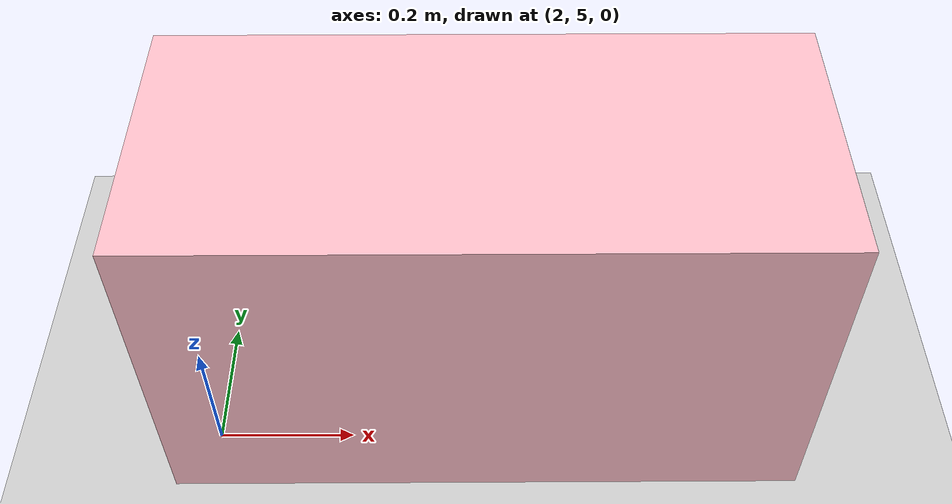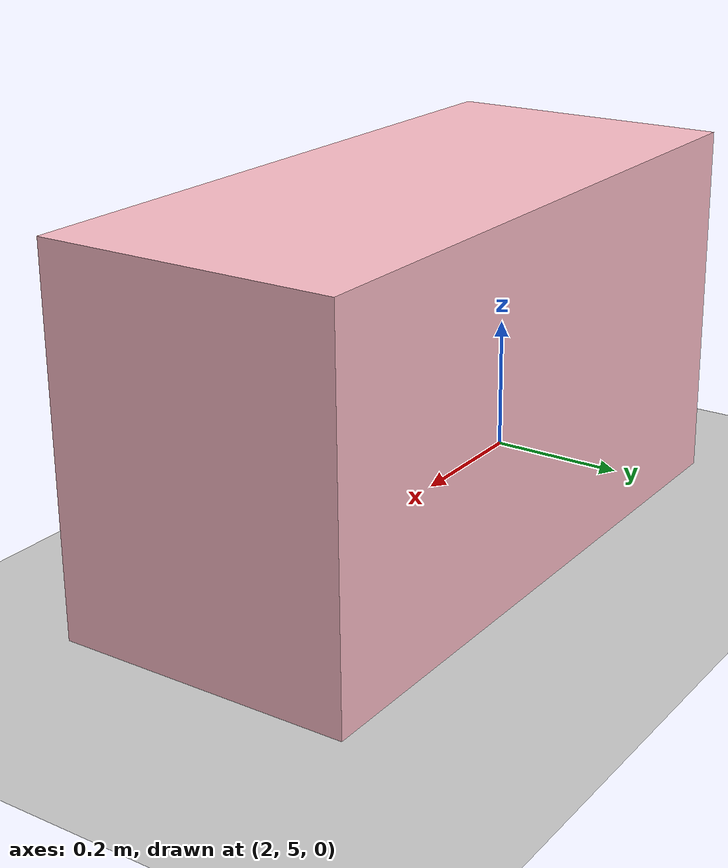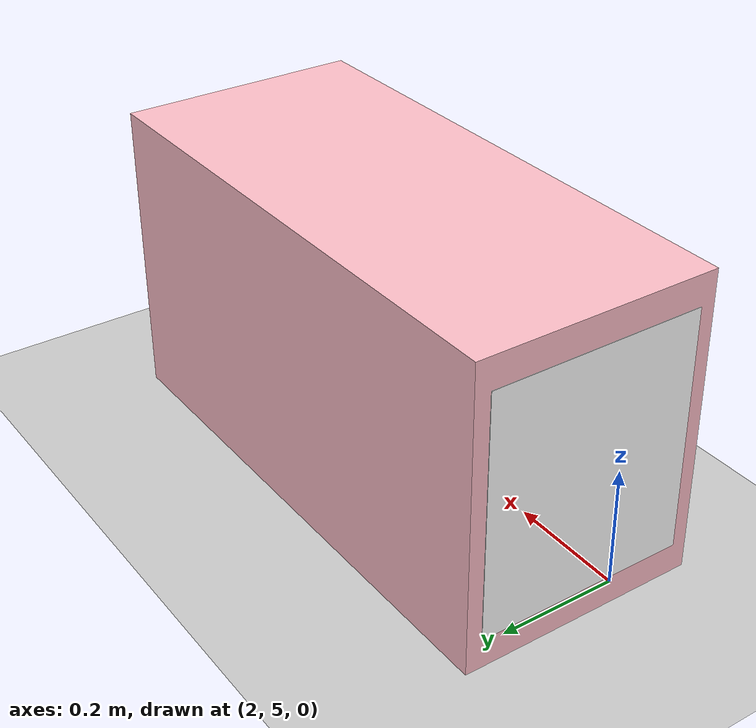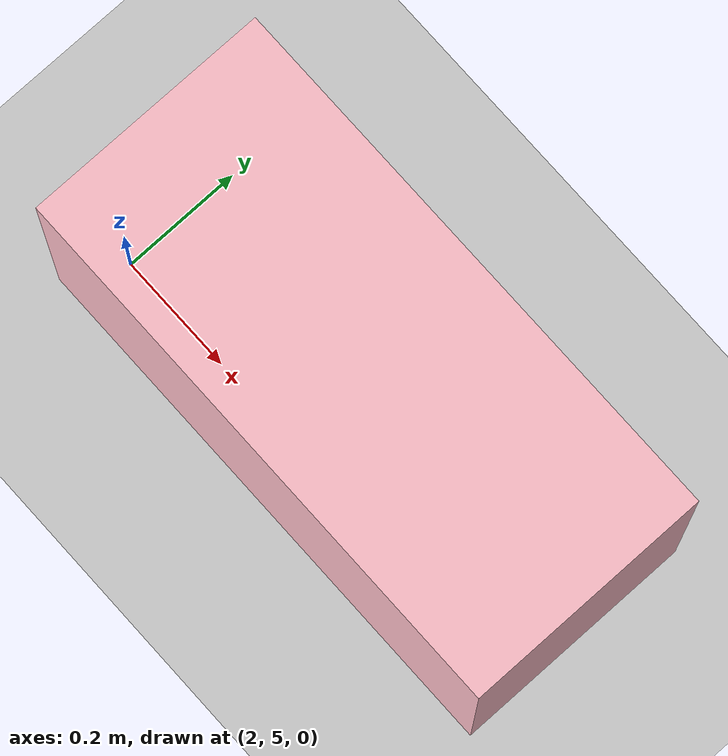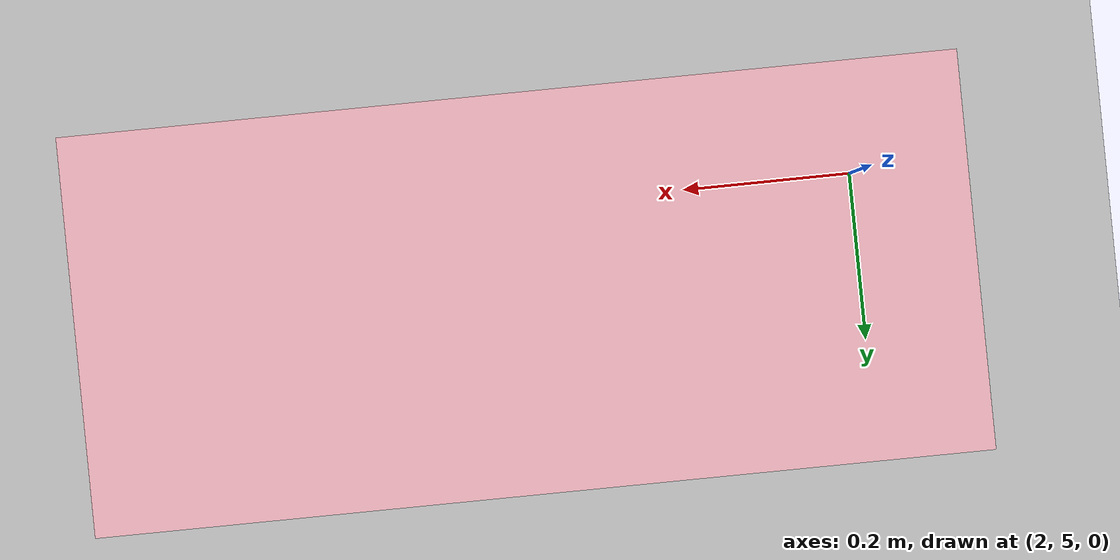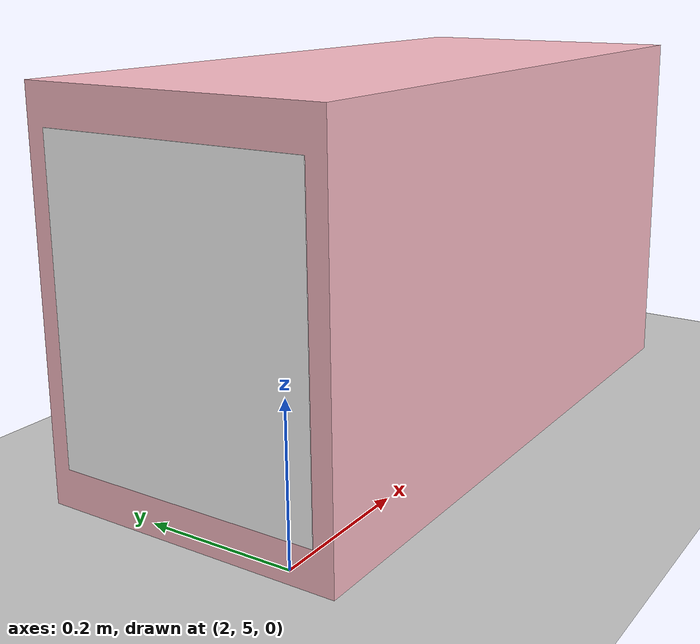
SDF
<sdf version="1.9">
 <world name="pig_pen_8units_world">
  <model name="ground_plane">
   <static>true</static>
   <link name="link">
    <collision name="collision">
     <geometry><plane><normal>0 0 1</normal><size>20 20</size></plane></geometry>
     <surface><friction><ode><mu>1.0</mu><mu2>1.0</mu2></ode></friction></surface>
    </collision>
    <visual name="visual">
     <geometry><plane><normal>0 0 1</normal><size>20 20</size></plane></geometry>
     <material>
      <ambient>0.8 0.8 0.8 1</ambient>
      <diffuse>0.8 0.8 0.8 1</diffuse>
      <specular>0.2 0.2 0.2 1</specular>
     </material>
    </visual>
   </link>
  </model>
  <include><uri>model://farm_pig</uri><name>pig5</name><pose>2.4 5.105 0.27 0 0 3.1416</pose></include>
 </world>
</sdf>
